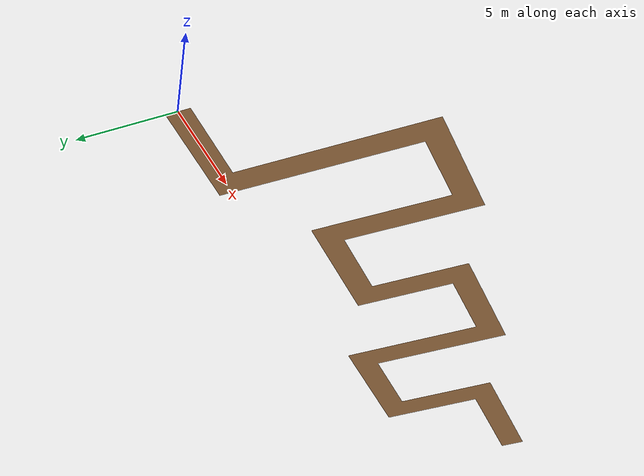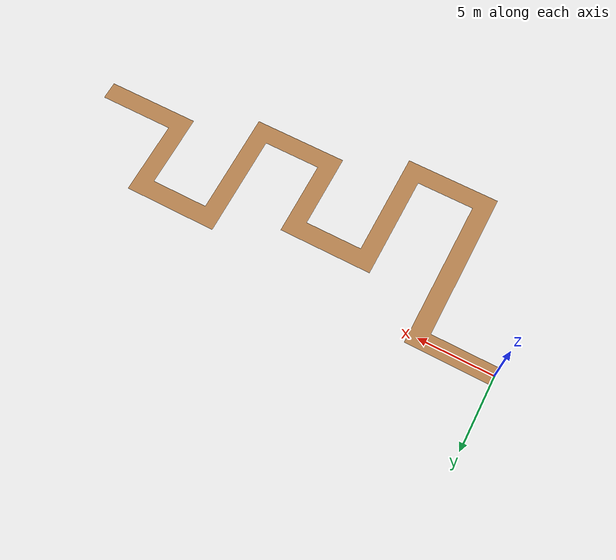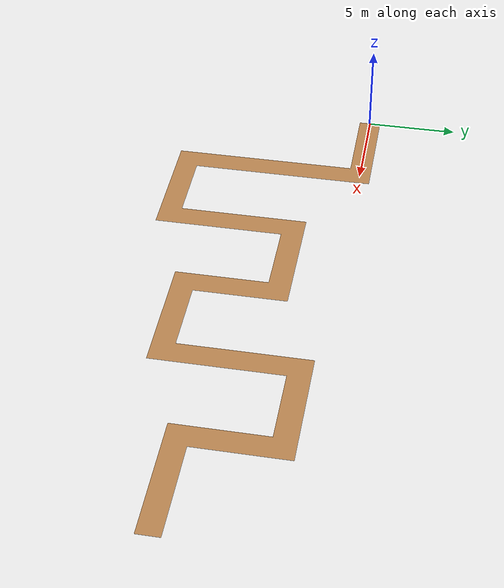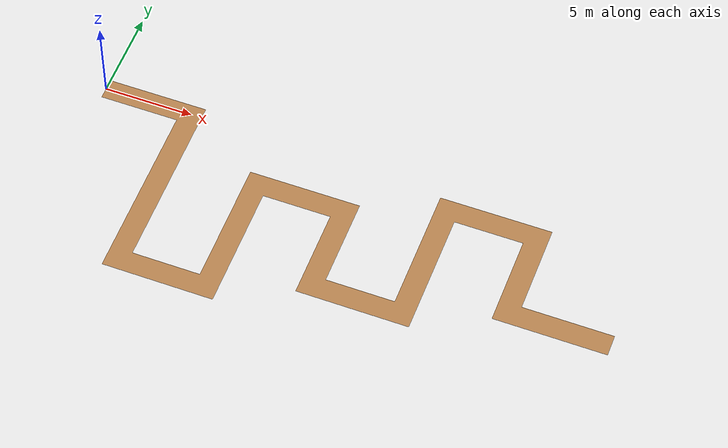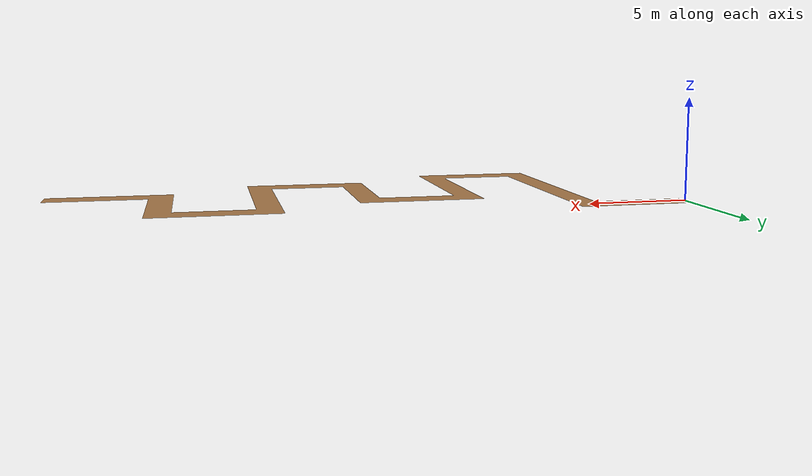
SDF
<?xml version="1.0" ?>
<sdf version='1.5'>
<model name='wood_tile'>
<static>true</static>
<link name="link">
   <pose frame=''>0 0 0.01 0 0 0</pose>
   <collision name='wood_tileC'>
    <geometry>
      <mesh>
        <scale>1.0 1.0 1.0</scale>
        <uri>model://wood_tile/model2.dae</uri>
      </mesh>
    </geometry>
  </collision>
  <visual name='wood_tileV'>
    <cast_shadows>false</cast_shadows>
    <geometry>
      <mesh>
        <scale>1.0 1.0 1.0</scale>
        <uri>model://wood_tile/model2.dae</uri>
      </mesh>
    </geometry>
    <material>
      <script>
        <name>wood_tile</name>
        <uri>model://wood_tile/model2.dae</uri>
      </script>
    </material>
  </visual>
</link>
</model>
</sdf>
